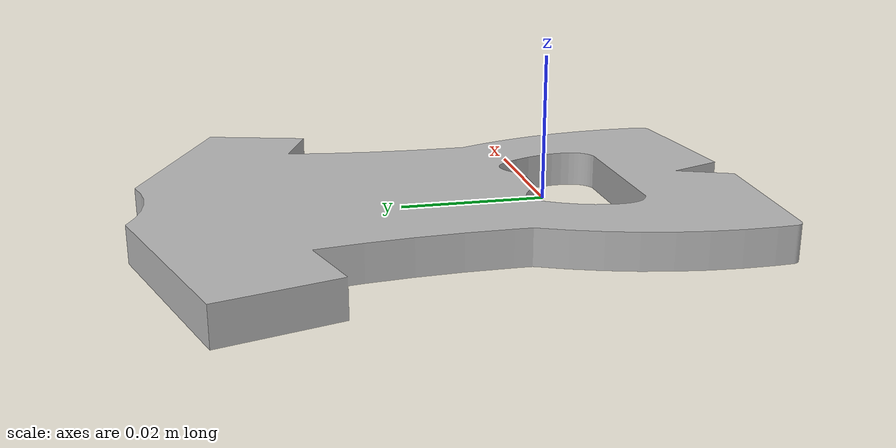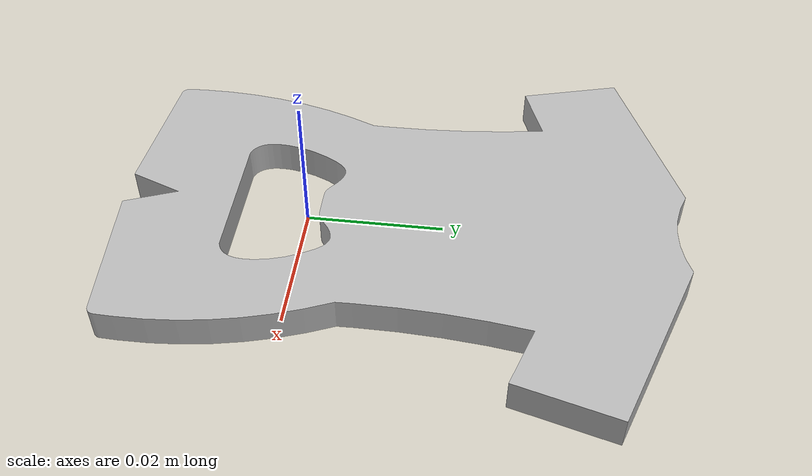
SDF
<?xml version="1.0" ?>
<sdf version="1.5">
  <model name="beer_opener">
  <static>true</static>
  <pose>0 0 0 0 0 0</pose>
    <link name="link">
      <inertial>
        <mass>1.0</mass>
        <inertia>
          <ixx>0.001058</ixx>
          <ixy>0.0</ixy>
          <ixz>0.0</ixz>
          <iyy>0.001058</iyy>
          <iyz>0.0</iyz>
          <izz>0.00045</izz>
        </inertia>
      </inertial>
      <collision name="collision">
        <pose>0 0 0 0 0 0</pose>
        <geometry>
          <mesh>
            <uri>model://beer_opener/beer_opener.stl</uri>
            <scale>1 1 1</scale>
          </mesh>
        </geometry>
      </collision>
      <visual name="visual">
        <pose>0 0 0 0 0 0</pose>
        <geometry>
          <mesh>
            <uri>model://beer_opener/beer_opener.dae</uri>
            <scale>1 1 1</scale>
          </mesh>
        </geometry>
      </visual>
    </link>
  </model>
</sdf>
